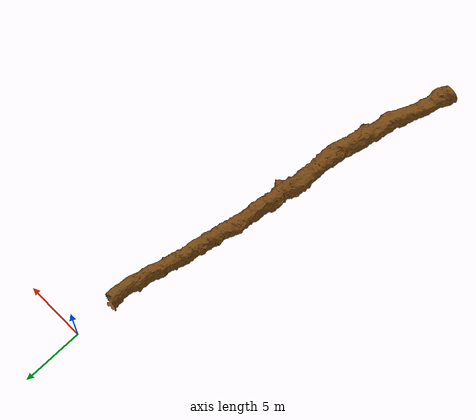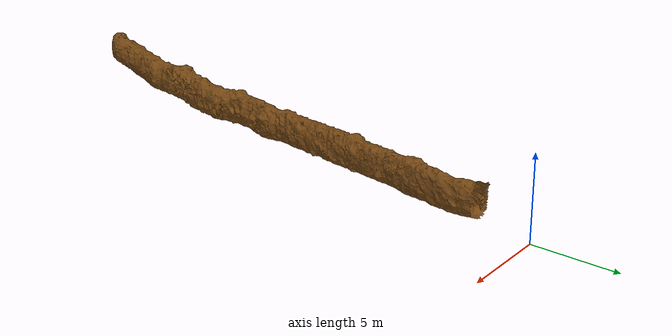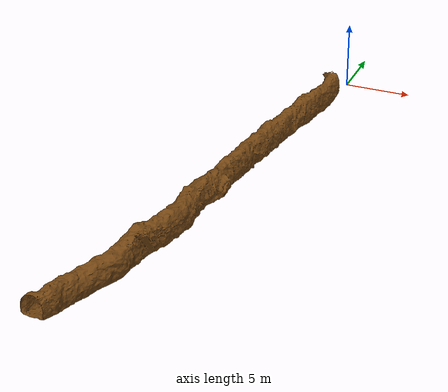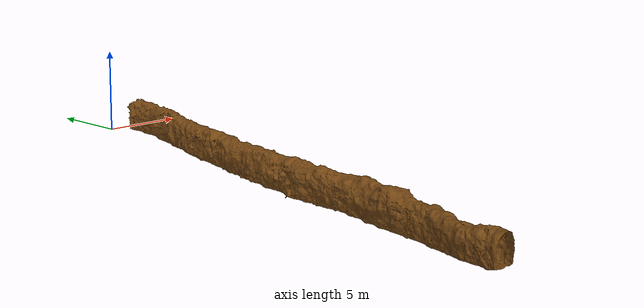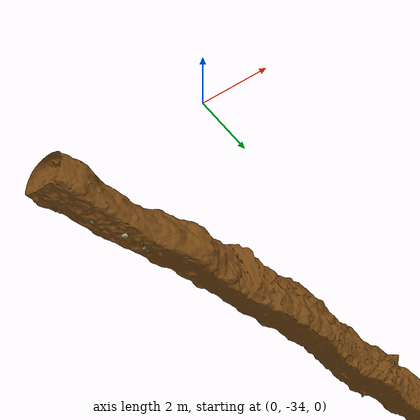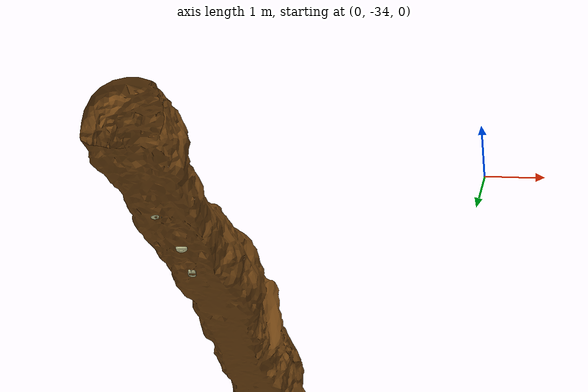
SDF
<?xml version="1.0" ?>
<sdf version="1.6">
  <model name="cave">
    <static>true</static>
    <link name="link">
      <collision name="collision">
        <geometry>
          <mesh>
            <scale>1 1 1</scale>
            <uri>model://cave/meshes/cave.stl</uri>
          </mesh>
        </geometry>
      </collision>
      <visual name="visual">
        <geometry>
          <mesh>
            <scale>1 1 1</scale>
            <uri>model://cave/meshes/cave.dae</uri>
          </mesh>
        </geometry>
        <material>
          <ambient>0.45 0.27 0.07 1</ambient>
          <diffuse>0.45 0.27 0.07 1</diffuse>
          <specular>0 0 0 0</specular>
          <emissive>0 0 0 1</emissive>
        </material>
      </visual>
    </link>

    <link name="rock1">
      <pose> -5.5 -32 0.2 0 0 0</pose>
      <collision name="collision">
        <geometry>
          <mesh>
            <scale>0.002 0.002 0.002</scale>
            <uri>model://cave/meshes/Rock_1.stl</uri>
          </mesh>
        </geometry>
      </collision>
      <visual name="visual">
        <geometry>
          <mesh>
            <scale>0.002 0.002 0.002</scale>
            <uri>model://cave/meshes/Rock_1.stl</uri>
          </mesh>
        </geometry>
        <material>
          <ambient>0.8 0.8 0.6 1</ambient>
          <diffuse>0.8 0.8 0.6 1</diffuse>
          <specular>0 0 0 0</specular>
          <emissive>0 0 0 1</emissive>
        </material>
      </visual>
    </link>

    <link name="rock2">
      <pose> -5.1 -31 0.1 0 0 0</pose>
      <collision name="collision">
        <geometry>
          <mesh>
            <scale>0.002 0.002 0.002</scale>
            <uri>model://cave/meshes/Rock_2.stl</uri>
          </mesh>
        </geometry>
      </collision>
      <visual name="visual">
        <geometry>
          <mesh>
            <scale>0.002 0.002 0.002</scale>
            <uri>model://cave/meshes/Rock_2.stl</uri>
          </mesh>
        </geometry>
        <material>
          <ambient>0.8 0.8 0.6 1</ambient>
          <diffuse>0.8 0.8 0.6 1</diffuse>
          <specular>0 0 0 0</specular>
          <emissive>0 0 0 1</emissive>
        </material>
      </visual>
    </link>

    <link name="rock3">
      <pose> -4.9 -30 0.05 0 0 0</pose>
      <collision name="collision">
        <geometry>
          <mesh>
            <scale>0.002 0.004 0.004</scale>
            <uri>model://cave/meshes/Rock_3.stl</uri>
          </mesh>
        </geometry>
      </collision>
      <visual name="visual">
        <geometry>
          <mesh>
            <scale>0.002 0.004 0.004</scale>
            <uri>model://cave/meshes/Rock_3.stl</uri>
          </mesh>
        </geometry>
        <material>
          <ambient>0.8 0.8 0.6 1</ambient>
          <diffuse>0.8 0.8 0.6 1</diffuse>
          <specular>0 0 0 0</specular>
          <emissive>0 0 0 1</emissive>
        </material>
      </visual>
    </link>

  </model>
</sdf>
